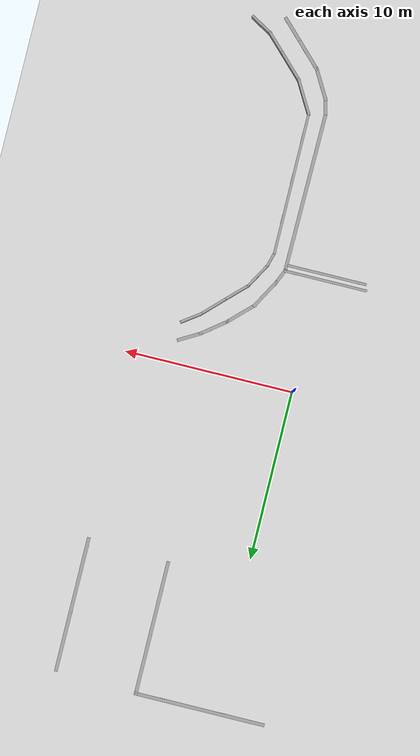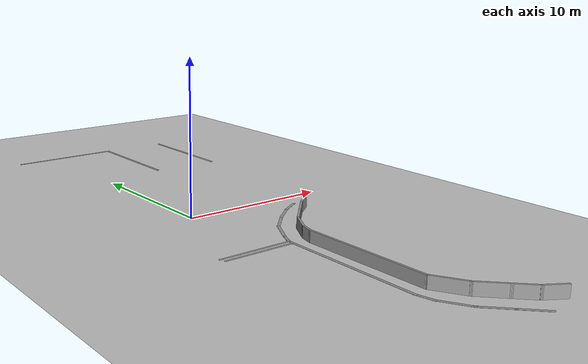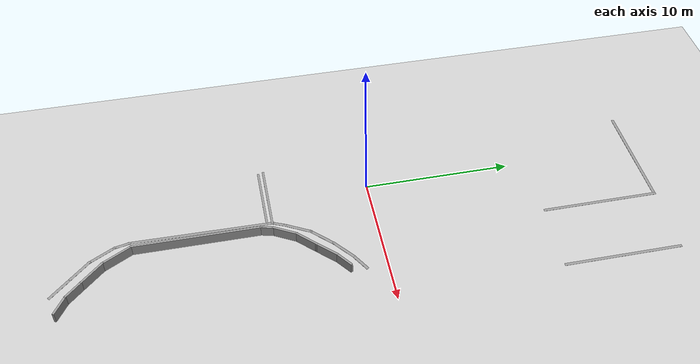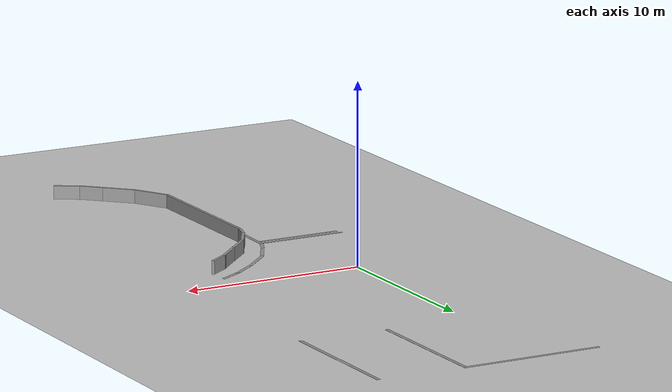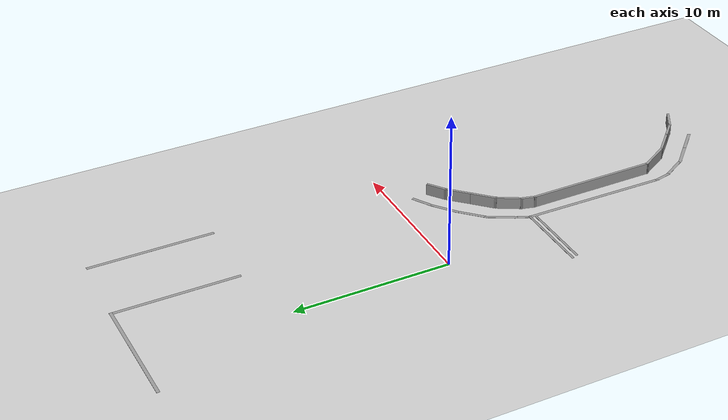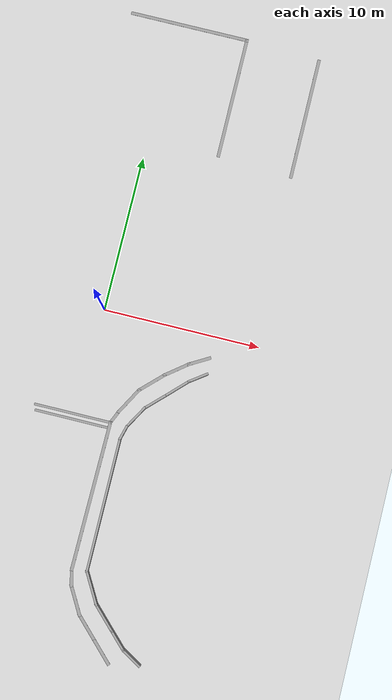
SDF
<sdf version="1.6">
 <world name="default">
  <model name="ground_plane">
   <static>1</static>
   <link name="link">
    <collision name="collision">
     <geometry><plane><normal>0 0 1</normal><size>100 100</size></plane></geometry>
     <surface>
      <contact><collide_bitmask>65535</collide_bitmask></contact>
      <friction><ode><mu>100</mu><mu2>50</mu2></ode></friction>
     </surface>
    </collision>
    <visual name="visual">
     <cast_shadows>0</cast_shadows>
     <geometry><plane><normal>0 0 1</normal><size>100 100</size></plane></geometry>
     <material>
      <script><uri>file://media/materials/scripts/gazebo.material</uri><name>Gazebo/Grey</name></script>
     </material>
    </visual>
   </link>
  </model>
  <model name="GercekDuvarSeritKoyu1">
   <link name="Wall_1048">
    <pose>-69.8093 -50.4126 0 0 -0 0</pose>
    <visual name="Wall_1048_Visual">
     <pose>0 0 0.005 0 -0 0</pose>
     <geometry><box><size>8 0.2 0.01</size></box></geometry>
     <material>
      <script><uri>file://media/materials/scripts/gazebo.material</uri><name>Gazebo/Grey</name></script>
      <ambient>1 1 1 1</ambient>
      <shader type="pixel"/>
     </material>
     <meta><layer>0</layer></meta>
    </visual>
    <collision name="Wall_1048_Collision">
     <pose>0 0 0.005 0 -0 0</pose>
     <geometry><box><size>8 0.2 0.01</size></box></geometry>
     <surface>
      <friction>
       <ode><mu>1</mu><mu2>1</mu2><fdir1>0 0 0</fdir1><slip1>0</slip1><slip2>0</slip2></ode>
       <torsional>
        <coefficient>1</coefficient>
        <patch_radius>0</patch_radius>
        <surface_radius>0</surface_radius>
        <use_patch_radius>1</use_patch_radius>
        <ode><slip>0</slip></ode>
       </torsional>
      </friction>
      <bounce><restitution_coefficient>0</restitution_coefficient><threshold>1e+06</threshold></bounce>
      <contact>
       <collide_without_contact>0</collide_without_contact>
       <collide_without_contact_bitmask>1</collide_without_contact_bitmask>
       <collide_bitmask>1</collide_bitmask>
       <ode>
        <soft_cfm>0</soft_cfm>
        <soft_erp>0.2</soft_erp>
        <kp>1e+13</kp>
        <kd>1</kd>
        <max_vel>0.01</max_vel>
        <min_depth>0</min_depth>
       </ode>
       <bullet>
        <split_impulse>1</split_impulse>
        <split_impulse_penetration_threshold>-0.01</split_impulse_penetration_threshold>
        <soft_cfm>0</soft_cfm>
        <soft_erp>0.2</soft_erp>
        <kp>1e+13</kp>
        <kd>1</kd>
       </bullet>
      </contact>
     </surface>
    </collision>
   </link>
   <link name="Wall_1050">
    <pose>-70.0479 -55.2375 0 0 -0 2e-05</pose>
    <visual name="Wall_1050_Visual">
     <pose>0 0 0.005 0 -0 0</pose>
     <geometry><box><size>8 0.2 0.01</size></box></geometry>
     <material>
      <script><uri>file://media/materials/scripts/gazebo.material</uri><name>Gazebo/Grey</name></script>
      <ambient>1 1 1 1</ambient>
      <shader type="pixel"/>
     </material>
     <meta><layer>0</layer></meta>
    </visual>
    <collision name="Wall_1050_Collision">
     <pose>0 0 0.005 0 -0 0</pose>
     <geometry><box><size>8 0.2 0.01</size></box></geometry>
     <surface>
      <friction>
       <ode><mu>1</mu><mu2>1</mu2><fdir1>0 0 0</fdir1><slip1>0</slip1><slip2>0</slip2></ode>
       <torsional>
        <coefficient>1</coefficient>
        <patch_radius>0</patch_radius>
        <surface_radius>0</surface_radius>
        <use_patch_radius>1</use_patch_radius>
        <ode><slip>0</slip></ode>
       </torsional>
      </friction>
      <bounce><restitution_coefficient>0</restitution_coefficient><threshold>1e+06</threshold></bounce>
      <contact>
       <collide_without_contact>0</collide_without_contact>
       <collide_without_contact_bitmask>1</collide_without_contact_bitmask>
       <collide_bitmask>1</collide_bitmask>
       <ode>
        <soft_cfm>0</soft_cfm>
        <soft_erp>0.2</soft_erp>
        <kp>1e+13</kp>
        <kd>1</kd>
        <max_vel>0.01</max_vel>
        <min_depth>0</min_depth>
       </ode>
       <bullet>
        <split_impulse>1</split_impulse>
        <split_impulse_penetration_threshold>-0.01</split_impulse_penetration_threshold>
        <soft_cfm>0</soft_cfm>
        <soft_erp>0.2</soft_erp>
        <kp>1e+13</kp>
        <kd>1</kd>
       </bullet>
      </contact>
     </surface>
    </collision>
   </link>
   <link name="Wall_329">
    <pose>-73.9479 -59.0376 0 0 0 -1.5708</pose>
    <visual name="Wall_329_Visual">
     <pose>0 0 0.005 0 -0 0</pose>
     <geometry><box><size>7.79982 0.2 0.01</size></box></geometry>
     <material>
      <script><uri>file://media/materials/scripts/gazebo.material</uri><name>Gazebo/Grey</name></script>
      <ambient>1 1 1 1</ambient>
      <shader type="pixel"/>
     </material>
     <meta><layer>0</layer></meta>
    </visual>
    <collision name="Wall_329_Collision">
     <pose>0 0 0.005 0 -0 0</pose>
     <geometry><box><size>7.79982 0.2 0.01</size></box></geometry>
     <surface>
      <friction>
       <ode><mu>1</mu><mu2>1</mu2><fdir1>0 0 0</fdir1><slip1>0</slip1><slip2>0</slip2></ode>
       <torsional>
        <coefficient>1</coefficient>
        <patch_radius>0</patch_radius>
        <surface_radius>0</surface_radius>
        <use_patch_radius>1</use_patch_radius>
        <ode><slip>0</slip></ode>
       </torsional>
      </friction>
      <bounce><restitution_coefficient>0</restitution_coefficient><threshold>1e+06</threshold></bounce>
      <contact>
       <collide_without_contact>0</collide_without_contact>
       <collide_without_contact_bitmask>1</collide_without_contact_bitmask>
       <collide_bitmask>1</collide_bitmask>
       <ode>
        <soft_cfm>0</soft_cfm>
        <soft_erp>0.2</soft_erp>
        <kp>1e+13</kp>
        <kd>1</kd>
        <max_vel>0.01</max_vel>
        <min_depth>0</min_depth>
       </ode>
       <bullet>
        <split_impulse>1</split_impulse>
        <split_impulse_penetration_threshold>-0.01</split_impulse_penetration_threshold>
        <soft_cfm>0</soft_cfm>
        <soft_erp>0.2</soft_erp>
        <kp>1e+13</kp>
        <kd>1</kd>
       </bullet>
      </contact>
     </surface>
    </collision>
   </link>
   <link name="Wall_332">
    <pose>-43.2989 -57.8351 0 0 0 -0.011657</pose>
    <visual name="Wall_332_Visual">
     <pose>0 0 0.005 0 -0 0</pose>
     <geometry><box><size>9.55032 0.2 0.01</size></box></geometry>
     <material>
      <script><uri>file://media/materials/scripts/gazebo.material</uri><name>Gazebo/Grey</name></script>
      <ambient>1 1 1 1</ambient>
      <shader type="pixel"/>
     </material>
     <meta><layer>0</layer></meta>
    </visual>
    <collision name="Wall_332_Collision">
     <pose>0 0 0.005 0 -0 0</pose>
     <geometry><box><size>9.55032 0.2 0.01</size></box></geometry>
     <surface>
      <friction>
       <ode><mu>1</mu><mu2>1</mu2><fdir1>0 0 0</fdir1><slip1>0</slip1><slip2>0</slip2></ode>
       <torsional>
        <coefficient>1</coefficient>
        <patch_radius>0</patch_radius>
        <surface_radius>0</surface_radius>
        <use_patch_radius>1</use_patch_radius>
        <ode><slip>0</slip></ode>
       </torsional>
      </friction>
      <bounce><restitution_coefficient>0</restitution_coefficient><threshold>1e+06</threshold></bounce>
      <contact>
       <collide_without_contact>0</collide_without_contact>
       <collide_without_contact_bitmask>1</collide_without_contact_bitmask>
       <collide_bitmask>1</collide_bitmask>
       <ode>
        <soft_cfm>0</soft_cfm>
        <soft_erp>0.2</soft_erp>
        <kp>1e+13</kp>
        <kd>1</kd>
        <max_vel>0.01</max_vel>
        <min_depth>0</min_depth>
       </ode>
       <bullet>
        <split_impulse>1</split_impulse>
        <split_impulse_penetration_threshold>-0.01</split_impulse_penetration_threshold>
        <soft_cfm>0</soft_cfm>
        <soft_erp>0.2</soft_erp>
        <kp>1e+13</kp>
        <kd>1</kd>
       </bullet>
      </contact>
     </surface>
    </collision>
   </link>
   <link name="Wall_338">
    <pose>-38.1344 -57.7796 0 0 -0 0.221047</pose>
    <visual name="Wall_338_Visual">
     <pose>0 0 0.005 0 -0 0</pose>
     <geometry><box><size>1.20315 0.2 0.01</size></box></geometry>
     <material>
      <script><uri>file://media/materials/scripts/gazebo.material</uri><name>Gazebo/Grey</name></script>
      <ambient>1 1 1 1</ambient>
      <shader type="pixel"/>
     </material>
     <meta><layer>0</layer></meta>
    </visual>
    <collision name="Wall_338_Collision">
     <pose>0 0 0.005 0 -0 0</pose>
     <geometry><box><size>1.20315 0.2 0.01</size></box></geometry>
     <surface>
      <friction>
       <ode><mu>1</mu><mu2>1</mu2><fdir1>0 0 0</fdir1><slip1>0</slip1><slip2>0</slip2></ode>
       <torsional>
        <coefficient>1</coefficient>
        <patch_radius>0</patch_radius>
        <surface_radius>0</surface_radius>
        <use_patch_radius>1</use_patch_radius>
        <ode><slip>0</slip></ode>
       </torsional>
      </friction>
      <bounce><restitution_coefficient>0</restitution_coefficient><threshold>1e+06</threshold></bounce>
      <contact>
       <collide_without_contact>0</collide_without_contact>
       <collide_without_contact_bitmask>1</collide_without_contact_bitmask>
       <collide_bitmask>1</collide_bitmask>
       <ode>
        <soft_cfm>0</soft_cfm>
        <soft_erp>0.2</soft_erp>
        <kp>1e+13</kp>
        <kd>1</kd>
        <max_vel>0.01</max_vel>
        <min_depth>0</min_depth>
       </ode>
       <bullet>
        <split_impulse>1</split_impulse>
        <split_impulse_penetration_threshold>-0.01</split_impulse_penetration_threshold>
        <soft_cfm>0</soft_cfm>
        <soft_erp>0.2</soft_erp>
        <kp>1e+13</kp>
        <kd>1</kd>
       </bullet>
      </contact>
     </surface>
    </collision>
   </link>
   <link name="Wall_339">
    <pose>-36.8439 -57.2071 0 0 -0 0.523639</pose>
    <visual name="Wall_339_Visual">
     <pose>0 0 0.005 0 -0 0</pose>
     <geometry><box><size>2.04971 0.2 0.01</size></box></geometry>
     <material>
      <script><uri>file://media/materials/scripts/gazebo.material</uri><name>Gazebo/Grey</name></script>
      <ambient>1 1 1 1</ambient>
      <shader type="pixel"/>
     </material>
     <meta><layer>0</layer></meta>
    </visual>
    <collision name="Wall_339_Collision">
     <pose>0 0 0.005 0 -0 0</pose>
     <geometry><box><size>2.04971 0.2 0.01</size></box></geometry>
     <surface>
      <friction>
       <ode><mu>1</mu><mu2>1</mu2><fdir1>0 0 0</fdir1><slip1>0</slip1><slip2>0</slip2></ode>
       <torsional>
        <coefficient>1</coefficient>
        <patch_radius>0</patch_radius>
        <surface_radius>0</surface_radius>
        <use_patch_radius>1</use_patch_radius>
        <ode><slip>0</slip></ode>
       </torsional>
      </friction>
      <bounce><restitution_coefficient>0</restitution_coefficient><threshold>1e+06</threshold></bounce>
      <contact>
       <collide_without_contact>0</collide_without_contact>
       <collide_without_contact_bitmask>1</collide_without_contact_bitmask>
       <collide_bitmask>1</collide_bitmask>
       <ode>
        <soft_cfm>0</soft_cfm>
        <soft_erp>0.2</soft_erp>
        <kp>1e+13</kp>
        <kd>1</kd>
        <max_vel>0.01</max_vel>
        <min_depth>0</min_depth>
       </ode>
       <bullet>
        <split_impulse>1</split_impulse>
        <split_impulse_penetration_threshold>-0.01</split_impulse_penetration_threshold>
        <soft_cfm>0</soft_cfm>
        <soft_erp>0.2</soft_erp>
        <kp>1e+13</kp>
        <kd>1</kd>
       </bullet>
      </contact>
     </surface>
    </collision>
   </link>
   <link name="Wall_340">
    <pose>-35.3889 -56.0906 0 0 -0 0.785398</pose>
    <visual name="Wall_340_Visual">
     <pose>0 0 0.005 0 -0 0</pose>
     <geometry><box><size>2.04981 0.2 0.01</size></box></geometry>
     <material>
      <script><uri>file://media/materials/scripts/gazebo.material</uri><name>Gazebo/Grey</name></script>
      <ambient>1 1 1 1</ambient>
      <shader type="pixel"/>
     </material>
     <meta><layer>0</layer></meta>
    </visual>
    <collision name="Wall_340_Collision">
     <pose>0 0 0.005 0 -0 0</pose>
     <geometry><box><size>2.04981 0.2 0.01</size></box></geometry>
     <surface>
      <friction>
       <ode><mu>1</mu><mu2>1</mu2><fdir1>0 0 0</fdir1><slip1>0</slip1><slip2>0</slip2></ode>
       <torsional>
        <coefficient>1</coefficient>
        <patch_radius>0</patch_radius>
        <surface_radius>0</surface_radius>
        <use_patch_radius>1</use_patch_radius>
        <ode><slip>0</slip></ode>
       </torsional>
      </friction>
      <bounce><restitution_coefficient>0</restitution_coefficient><threshold>1e+06</threshold></bounce>
      <contact>
       <collide_without_contact>0</collide_without_contact>
       <collide_without_contact_bitmask>1</collide_without_contact_bitmask>
       <collide_bitmask>1</collide_bitmask>
       <ode>
        <soft_cfm>0</soft_cfm>
        <soft_erp>0.2</soft_erp>
        <kp>1e+13</kp>
        <kd>1</kd>
        <max_vel>0.01</max_vel>
        <min_depth>0</min_depth>
       </ode>
       <bullet>
        <split_impulse>1</split_impulse>
        <split_impulse_penetration_threshold>-0.01</split_impulse_penetration_threshold>
        <soft_cfm>0</soft_cfm>
        <soft_erp>0.2</soft_erp>
        <kp>1e+13</kp>
        <kd>1</kd>
       </bullet>
      </contact>
     </surface>
    </collision>
   </link>
   <link name="Wall_341">
    <pose>-34.1694 -54.8711 0 0 -0 0.785398</pose>
    <visual name="Wall_341_Visual">
     <pose>0 0 0.005 0 -0 0</pose>
     <geometry><box><size>1.80002 0.2 0.01</size></box></geometry>
     <material>
      <script><uri>file://media/materials/scripts/gazebo.material</uri><name>Gazebo/Grey</name></script>
      <ambient>1 1 1 1</ambient>
      <shader type="pixel"/>
     </material>
     <meta><layer>0</layer></meta>
    </visual>
    <collision name="Wall_341_Collision">
     <pose>0 0 0.005 0 -0 0</pose>
     <geometry><box><size>1.80002 0.2 0.01</size></box></geometry>
     <surface>
      <friction>
       <ode><mu>1</mu><mu2>1</mu2><fdir1>0 0 0</fdir1><slip1>0</slip1><slip2>0</slip2></ode>
       <torsional>
        <coefficient>1</coefficient>
        <patch_radius>0</patch_radius>
        <surface_radius>0</surface_radius>
        <use_patch_radius>1</use_patch_radius>
        <ode><slip>0</slip></ode>
       </torsional>
      </friction>
      <bounce><restitution_coefficient>0</restitution_coefficient><threshold>1e+06</threshold></bounce>
      <contact>
       <collide_without_contact>0</collide_without_contact>
       <collide_without_contact_bitmask>1</collide_without_contact_bitmask>
       <collide_bitmask>1</collide_bitmask>
       <ode>
        <soft_cfm>0</soft_cfm>
        <soft_erp>0.2</soft_erp>
        <kp>1e+13</kp>
        <kd>1</kd>
        <max_vel>0.01</max_vel>
        <min_depth>0</min_depth>
       </ode>
       <bullet>
        <split_impulse>1</split_impulse>
        <split_impulse_penetration_threshold>-0.01</split_impulse_penetration_threshold>
        <soft_cfm>0</soft_cfm>
        <soft_erp>0.2</soft_erp>
        <kp>1e+13</kp>
        <kd>1</kd>
       </bullet>
      </contact>
     </surface>
    </collision>
   </link>
   <link name="Wall_371">
    <pose>-53.0394 -53.3021 0 0 0 -1.04715</pose>
    <visual name="Wall_371_Visual">
     <pose>0 0 0.005 0 -0 0</pose>
     <geometry><box><size>1.55045 0.2 0.01</size></box></geometry>
     <material>
      <script><uri>file://media/materials/scripts/gazebo.material</uri><name>Gazebo/Grey</name></script>
      <ambient>1 1 1 1</ambient>
      <shader type="pixel"/>
     </material>
     <meta><layer>0</layer></meta>
    </visual>
    <collision name="Wall_371_Collision">
     <pose>0 0 0.005 0 -0 0</pose>
     <geometry><box><size>1.55045 0.2 0.01</size></box></geometry>
     <surface>
      <friction>
       <ode><mu>1</mu><mu2>1</mu2><fdir1>0 0 0</fdir1><slip1>0</slip1><slip2>0</slip2></ode>
       <torsional>
        <coefficient>1</coefficient>
        <patch_radius>0</patch_radius>
        <surface_radius>0</surface_radius>
        <use_patch_radius>1</use_patch_radius>
        <ode><slip>0</slip></ode>
       </torsional>
      </friction>
      <bounce><restitution_coefficient>0</restitution_coefficient><threshold>1e+06</threshold></bounce>
      <contact>
       <collide_without_contact>0</collide_without_contact>
       <collide_without_contact_bitmask>1</collide_without_contact_bitmask>
       <collide_bitmask>1</collide_bitmask>
       <ode>
        <soft_cfm>0</soft_cfm>
        <soft_erp>0.2</soft_erp>
        <kp>1e+13</kp>
        <kd>1</kd>
        <max_vel>0.01</max_vel>
        <min_depth>0</min_depth>
       </ode>
       <bullet>
        <split_impulse>1</split_impulse>
        <split_impulse_penetration_threshold>-0.01</split_impulse_penetration_threshold>
        <soft_cfm>0</soft_cfm>
        <soft_erp>0.2</soft_erp>
        <kp>1e+13</kp>
        <kd>1</kd>
       </bullet>
      </contact>
     </surface>
    </collision>
   </link>
   <link name="Wall_372">
    <pose>-52.1899 -54.5436 0 0 0 -0.908805</pose>
    <visual name="Wall_372_Visual">
     <pose>0 0 0.005 0 -0 0</pose>
     <geometry><box><size>1.86549 0.2 0.01</size></box></geometry>
     <material>
      <script><uri>file://media/materials/scripts/gazebo.material</uri><name>Gazebo/Grey</name></script>
      <ambient>1 1 1 1</ambient>
      <shader type="pixel"/>
     </material>
     <meta><layer>0</layer></meta>
    </visual>
    <collision name="Wall_372_Collision">
     <pose>0 0 0.005 0 -0 0</pose>
     <geometry><box><size>1.86549 0.2 0.01</size></box></geometry>
     <surface>
      <friction>
       <ode><mu>1</mu><mu2>1</mu2><fdir1>0 0 0</fdir1><slip1>0</slip1><slip2>0</slip2></ode>
       <torsional>
        <coefficient>1</coefficient>
        <patch_radius>0</patch_radius>
        <surface_radius>0</surface_radius>
        <use_patch_radius>1</use_patch_radius>
        <ode><slip>0</slip></ode>
       </torsional>
      </friction>
      <bounce><restitution_coefficient>0</restitution_coefficient><threshold>1e+06</threshold></bounce>
      <contact>
       <collide_without_contact>0</collide_without_contact>
       <collide_without_contact_bitmask>1</collide_without_contact_bitmask>
       <collide_bitmask>1</collide_bitmask>
       <ode>
        <soft_cfm>0</soft_cfm>
        <soft_erp>0.2</soft_erp>
        <kp>1e+13</kp>
        <kd>1</kd>
        <max_vel>0.01</max_vel>
        <min_depth>0</min_depth>
       </ode>
       <bullet>
        <split_impulse>1</split_impulse>
        <split_impulse_penetration_threshold>-0.01</split_impulse_penetration_threshold>
        <soft_cfm>0</soft_cfm>
        <soft_erp>0.2</soft_erp>
        <kp>1e+13</kp>
        <kd>1</kd>
       </bullet>
      </contact>
     </surface>
    </collision>
   </link>
   <link name="Wall_373">
    <pose>-51.0239 -55.8676 0 0 0 -0.795239</pose>
    <visual name="Wall_373_Visual">
     <pose>0 0 0.005 0 -0 0</pose>
     <geometry><box><size>2.06852 0.2 0.01</size></box></geometry>
     <material>
      <script><uri>file://media/materials/scripts/gazebo.material</uri><name>Gazebo/Grey</name></script>
      <ambient>1 1 1 1</ambient>
      <shader type="pixel"/>
     </material>
     <meta><layer>0</layer></meta>
    </visual>
    <collision name="Wall_373_Collision">
     <pose>0 0 0.005 0 -0 0</pose>
     <geometry><box><size>2.06852 0.2 0.01</size></box></geometry>
     <surface>
      <friction>
       <ode><mu>1</mu><mu2>1</mu2><fdir1>0 0 0</fdir1><slip1>0</slip1><slip2>0</slip2></ode>
       <torsional>
        <coefficient>1</coefficient>
        <patch_radius>0</patch_radius>
        <surface_radius>0</surface_radius>
        <use_patch_radius>1</use_patch_radius>
        <ode><slip>0</slip></ode>
       </torsional>
      </friction>
      <bounce><restitution_coefficient>0</restitution_coefficient><threshold>1e+06</threshold></bounce>
      <contact>
       <collide_without_contact>0</collide_without_contact>
       <collide_without_contact_bitmask>1</collide_without_contact_bitmask>
       <collide_bitmask>1</collide_bitmask>
       <ode>
        <soft_cfm>0</soft_cfm>
        <soft_erp>0.2</soft_erp>
        <kp>1e+13</kp>
        <kd>1</kd>
        <max_vel>0.01</max_vel>
        <min_depth>0</min_depth>
       </ode>
       <bullet>
        <split_impulse>1</split_impulse>
        <split_impulse_penetration_threshold>-0.01</split_impulse_penetration_threshold>
        <soft_cfm>0</soft_cfm>
        <soft_erp>0.2</soft_erp>
        <kp>1e+13</kp>
        <kd>1</kd>
       </bullet>
      </contact>
     </surface>
    </collision>
   </link>
   <link name="Wall_374">
    <pose>-49.5689 -56.9841 0 0 0 -0.511381</pose>
    <visual name="Wall_374_Visual">
     <pose>0 0 0.005 0 -0 0</pose>
     <geometry><box><size>2.03697 0.2 0.01</size></box></geometry>
     <material>
      <script><uri>file://media/materials/scripts/gazebo.material</uri><name>Gazebo/Grey</name></script>
      <ambient>1 1 1 1</ambient>
      <shader type="pixel"/>
     </material>
     <meta><layer>0</layer></meta>
    </visual>
    <collision name="Wall_374_Collision">
     <pose>0 0 0.005 0 -0 0</pose>
     <geometry><box><size>2.03697 0.2 0.01</size></box></geometry>
     <surface>
      <friction>
       <ode><mu>1</mu><mu2>1</mu2><fdir1>0 0 0</fdir1><slip1>0</slip1><slip2>0</slip2></ode>
       <torsional>
        <coefficient>1</coefficient>
        <patch_radius>0</patch_radius>
        <surface_radius>0</surface_radius>
        <use_patch_radius>1</use_patch_radius>
        <ode><slip>0</slip></ode>
       </torsional>
      </friction>
      <bounce><restitution_coefficient>0</restitution_coefficient><threshold>1e+06</threshold></bounce>
      <contact>
       <collide_without_contact>0</collide_without_contact>
       <collide_without_contact_bitmask>1</collide_without_contact_bitmask>
       <collide_bitmask>1</collide_bitmask>
       <ode>
        <soft_cfm>0</soft_cfm>
        <soft_erp>0.2</soft_erp>
        <kp>1e+13</kp>
        <kd>1</kd>
        <max_vel>0.01</max_vel>
        <min_depth>0</min_depth>
       </ode>
       <bullet>
        <split_impulse>1</split_impulse>
        <split_impulse_penetration_threshold>-0.01</split_impulse_penetration_threshold>
        <soft_cfm>0</soft_cfm>
        <soft_erp>0.2</soft_erp>
        <kp>1e+13</kp>
        <kd>1</kd>
       </bullet>
      </contact>
     </surface>
    </collision>
   </link>
   <link name="Wall_377">
    <pose>-48.3709 -57.6071 0 0 -0 2.72958</pose>
    <visual name="Wall_377_Visual">
     <pose>0 0 0.005 0 -0 0</pose>
     <geometry><box><size>1.06651 0.2 0.01</size></box></geometry>
     <material>
      <script><uri>file://media/materials/scripts/gazebo.material</uri><name>Gazebo/Grey</name></script>
      <ambient>1 1 1 1</ambient>
      <shader type="pixel"/>
     </material>
     <meta><layer>0</layer></meta>
    </visual>
    <collision name="Wall_377_Collision">
     <pose>0 0 0.005 0 -0 0</pose>
     <geometry><box><size>1.06651 0.2 0.01</size></box></geometry>
     <surface>
      <friction>
       <ode><mu>1</mu><mu2>1</mu2><fdir1>0 0 0</fdir1><slip1>0</slip1><slip2>0</slip2></ode>
       <torsional>
        <coefficient>1</coefficient>
        <patch_radius>0</patch_radius>
        <surface_radius>0</surface_radius>
        <use_patch_radius>1</use_patch_radius>
        <ode><slip>0</slip></ode>
       </torsional>
      </friction>
      <bounce><restitution_coefficient>0</restitution_coefficient><threshold>1e+06</threshold></bounce>
      <contact>
       <collide_without_contact>0</collide_without_contact>
       <collide_without_contact_bitmask>1</collide_without_contact_bitmask>
       <collide_bitmask>1</collide_bitmask>
       <ode>
        <soft_cfm>0</soft_cfm>
        <soft_erp>0.2</soft_erp>
        <kp>1e+13</kp>
        <kd>1</kd>
        <max_vel>0.01</max_vel>
        <min_depth>0</min_depth>
       </ode>
       <bullet>
        <split_impulse>1</split_impulse>
        <split_impulse_penetration_threshold>-0.01</split_impulse_penetration_threshold>
        <soft_cfm>0</soft_cfm>
        <soft_erp>0.2</soft_erp>
        <kp>1e+13</kp>
        <kd>1</kd>
       </bullet>
      </contact>
     </surface>
    </collision>
   </link>
   <link name="Wall_596">
    <pose>-47.6239 -60.2076 0 0 0 -1.5708</pose>
    <visual name="Wall_596_Visual">
     <pose>0 0 0.005 0 -0 0</pose>
     <geometry><box><size>4.75 0.15 0.01</size></box></geometry>
     <material>
      <script><uri>file://media/materials/scripts/gazebo.material</uri><name>Gazebo/Grey</name></script>
      <ambient>1 1 1 1</ambient>
      <shader type="pixel"/>
     </material>
     <meta><layer>0</layer></meta>
    </visual>
    <collision name="Wall_596_Collision">
     <pose>0 0 0.005 0 -0 0</pose>
     <geometry><box><size>4.75 0.15 0.01</size></box></geometry>
     <surface>
      <friction>
       <ode><mu>1</mu><mu2>1</mu2><fdir1>0 0 0</fdir1><slip1>0</slip1><slip2>0</slip2></ode>
       <torsional>
        <coefficient>1</coefficient>
        <patch_radius>0</patch_radius>
        <surface_radius>0</surface_radius>
        <use_patch_radius>1</use_patch_radius>
        <ode><slip>0</slip></ode>
       </torsional>
      </friction>
      <bounce><restitution_coefficient>0</restitution_coefficient><threshold>1e+06</threshold></bounce>
      <contact>
       <collide_without_contact>0</collide_without_contact>
       <collide_without_contact_bitmask>1</collide_without_contact_bitmask>
       <collide_bitmask>1</collide_bitmask>
       <ode>
        <soft_cfm>0</soft_cfm>
        <soft_erp>0.2</soft_erp>
        <kp>1e+13</kp>
        <kd>1</kd>
        <max_vel>0.01</max_vel>
        <min_depth>0</min_depth>
       </ode>
       <bullet>
        <split_impulse>1</split_impulse>
        <split_impulse_penetration_threshold>-0.01</split_impulse_penetration_threshold>
        <soft_cfm>0</soft_cfm>
        <soft_erp>0.2</soft_erp>
        <kp>1e+13</kp>
        <kd>1</kd>
       </bullet>
      </contact>
     </surface>
    </collision>
   </link>
   <link name="Wall_600">
    <pose>-47.9739 -60.2056 0 0 0 -1.5708</pose>
    <visual name="Wall_600_Visual">
     <pose>0 0 0.005 0 -0 0</pose>
     <geometry><box><size>5 0.15 0.01</size></box></geometry>
     <material>
      <script><uri>file://media/materials/scripts/gazebo.material</uri><name>Gazebo/Grey</name></script>
      <ambient>1 1 1 1</ambient>
      <shader type="pixel"/>
     </material>
     <meta><layer>0</layer></meta>
    </visual>
    <collision name="Wall_600_Collision">
     <pose>0 0 0.005 0 -0 0</pose>
     <geometry><box><size>5 0.15 0.01</size></box></geometry>
     <surface>
      <friction>
       <ode><mu>1</mu><mu2>1</mu2><fdir1>0 0 0</fdir1><slip1>0</slip1><slip2>0</slip2></ode>
       <torsional>
        <coefficient>1</coefficient>
        <patch_radius>0</patch_radius>
        <surface_radius>0</surface_radius>
        <use_patch_radius>1</use_patch_radius>
        <ode><slip>0</slip></ode>
       </torsional>
      </friction>
      <bounce><restitution_coefficient>0</restitution_coefficient><threshold>1e+06</threshold></bounce>
      <contact>
       <collide_without_contact>0</collide_without_contact>
       <collide_without_contact_bitmask>1</collide_without_contact_bitmask>
       <collide_bitmask>1</collide_bitmask>
       <ode>
        <soft_cfm>0</soft_cfm>
        <soft_erp>0.2</soft_erp>
        <kp>1e+13</kp>
        <kd>1</kd>
        <max_vel>0.01</max_vel>
        <min_depth>0</min_depth>
       </ode>
       <bullet>
        <split_impulse>1</split_impulse>
        <split_impulse_penetration_threshold>-0.01</split_impulse_penetration_threshold>
        <soft_cfm>0</soft_cfm>
        <soft_erp>0.2</soft_erp>
        <kp>1e+13</kp>
        <kd>1</kd>
       </bullet>
      </contact>
     </surface>
    </collision>
   </link>
   <link name="Wall_78">
    <pose>-34.3794 -53.0146 0 0 0 -2.09482</pose>
    <inertial>
     <mass>1</mass>
     <inertia><ixx>1</ixx><ixy>0</ixy><ixz>0</ixz><iyy>1</iyy><iyz>0</iyz><izz>1</izz></inertia>
    </inertial>
    <visual name="Wall_78_Visual">
     <pose>0 0 0.375 0 -0 0</pose>
     <geometry><box><size>1.49965 0.15 0.75</size></box></geometry>
     <material>
      <script><uri>file://media/materials/scripts/gazebo.material</uri><name>Gazebo/Grey</name></script>
      <ambient>0.5 0.5 0.5 1</ambient>
      <shader type="pixel"><normal_map>__default__</normal_map></shader>
      <diffuse>0.7 0.7 0.7 1</diffuse>
      <specular>0.01 0.01 0.01 1</specular>
      <emissive>0 0 0 1</emissive>
     </material>
     <meta><layer>0</layer></meta>
    </visual>
    <collision name="Wall_78_Collision">
     <pose>0 0 0.375 0 -0 0</pose>
     <geometry><box><size>1.49965 0.15 0.75</size></box></geometry>
     <surface>
      <friction>
       <ode><mu>1</mu><mu2>1</mu2><fdir1>0 0 0</fdir1><slip1>0</slip1><slip2>0</slip2></ode>
       <torsional>
        <coefficient>1</coefficient>
        <patch_radius>0</patch_radius>
        <surface_radius>0</surface_radius>
        <use_patch_radius>1</use_patch_radius>
        <ode><slip>0</slip></ode>
       </torsional>
      </friction>
      <bounce><restitution_coefficient>0</restitution_coefficient><threshold>1e+06</threshold></bounce>
      <contact>
       <collide_without_contact>0</collide_without_contact>
       <collide_without_contact_bitmask>1</collide_without_contact_bitmask>
       <collide_bitmask>1</collide_bitmask>
       <ode>
        <soft_cfm>0</soft_cfm>
        <soft_erp>0.2</soft_erp>
        <kp>1e+13</kp>
        <kd>1</kd>
        <max_vel>0.01</max_vel>
        <min_depth>0</min_depth>
       </ode>
       <bullet>
        <split_impulse>1</split_impulse>
        <split_impulse_penetration_threshold>-0.01</split_impulse_penetration_threshold>
        <soft_cfm>0</soft_cfm>
        <soft_erp>0.2</soft_erp>
        <kp>1e+13</kp>
        <kd>1</kd>
       </bullet>
      </contact>
     </surface>
    </collision>
   </link>
   <link name="Wall_79">
    <pose>-35.1944 -54.0821 0 0 0 -2.34995</pose>
    <inertial>
     <mass>1</mass>
     <inertia><ixx>1</ixx><ixy>0</ixy><ixz>0</ixz><iyy>1</iyy><iyz>0</iyz><izz>1</izz></inertia>
    </inertial>
    <visual name="Wall_79_Visual">
     <pose>0 0 0.375 0 -0 0</pose>
     <geometry><box><size>1.50909 0.15 0.75</size></box></geometry>
     <material>
      <script><uri>file://media/materials/scripts/gazebo.material</uri><name>Gazebo/Grey</name></script>
      <ambient>0.5 0.5 0.5 1</ambient>
      <shader type="pixel"><normal_map>__default__</normal_map></shader>
      <diffuse>0.7 0.7 0.7 1</diffuse>
      <specular>0.01 0.01 0.01 1</specular>
      <emissive>0 0 0 1</emissive>
     </material>
     <meta><layer>0</layer></meta>
    </visual>
    <collision name="Wall_79_Collision">
     <pose>0 0 0.375 0 -0 0</pose>
     <geometry><box><size>1.50909 0.15 0.75</size></box></geometry>
     <surface>
      <friction>
       <ode><mu>1</mu><mu2>1</mu2><fdir1>0 0 0</fdir1><slip1>0</slip1><slip2>0</slip2></ode>
       <torsional>
        <coefficient>1</coefficient>
        <patch_radius>0</patch_radius>
        <surface_radius>0</surface_radius>
        <use_patch_radius>1</use_patch_radius>
        <ode><slip>0</slip></ode>
       </torsional>
      </friction>
      <bounce><restitution_coefficient>0</restitution_coefficient><threshold>1e+06</threshold></bounce>
      <contact>
       <collide_without_contact>0</collide_without_contact>
       <collide_without_contact_bitmask>1</collide_without_contact_bitmask>
       <collide_bitmask>1</collide_bitmask>
       <ode>
        <soft_cfm>0</soft_cfm>
        <soft_erp>0.2</soft_erp>
        <kp>1e+13</kp>
        <kd>1</kd>
        <max_vel>0.01</max_vel>
        <min_depth>0</min_depth>
       </ode>
       <bullet>
        <split_impulse>1</split_impulse>
        <split_impulse_penetration_threshold>-0.01</split_impulse_penetration_threshold>
        <soft_cfm>0</soft_cfm>
        <soft_erp>0.2</soft_erp>
        <kp>1e+13</kp>
        <kd>1</kd>
       </bullet>
      </contact>
     </surface>
    </collision>
   </link>
   <link name="Wall_80">
    <pose>-36.3259 -55.2196 0 0 0 -2.35619</pose>
    <inertial>
     <mass>1</mass>
     <inertia><ixx>1</ixx><ixy>0</ixy><ixz>0</ixz><iyy>1</iyy><iyz>0</iyz><izz>1</izz></inertia>
    </inertial>
    <visual name="Wall_80_Visual">
     <pose>0 0 0.375 0 -0 0</pose>
     <geometry><box><size>2 0.15 0.75</size></box></geometry>
     <material>
      <script><uri>file://media/materials/scripts/gazebo.material</uri><name>Gazebo/Grey</name></script>
      <ambient>0.5 0.5 0.5 1</ambient>
      <shader type="pixel"><normal_map>__default__</normal_map></shader>
      <diffuse>0.7 0.7 0.7 1</diffuse>
      <specular>0.01 0.01 0.01 1</specular>
      <emissive>0 0 0 1</emissive>
     </material>
     <meta><layer>0</layer></meta>
    </visual>
    <collision name="Wall_80_Collision">
     <pose>0 0 0.375 0 -0 0</pose>
     <geometry><box><size>2 0.15 0.75</size></box></geometry>
     <surface>
      <friction>
       <ode><mu>1</mu><mu2>1</mu2><fdir1>0 0 0</fdir1><slip1>0</slip1><slip2>0</slip2></ode>
       <torsional>
        <coefficient>1</coefficient>
        <patch_radius>0</patch_radius>
        <surface_radius>0</surface_radius>
        <use_patch_radius>1</use_patch_radius>
        <ode><slip>0</slip></ode>
       </torsional>
      </friction>
      <bounce><restitution_coefficient>0</restitution_coefficient><threshold>1e+06</threshold></bounce>
      <contact>
       <collide_without_contact>0</collide_without_contact>
       <collide_without_contact_bitmask>1</collide_without_contact_bitmask>
       <collide_bitmask>1</collide_bitmask>
       <ode>
        <soft_cfm>0</soft_cfm>
        <soft_erp>0.2</soft_erp>
        <kp>1e+13</kp>
        <kd>1</kd>
        <max_vel>0.01</max_vel>
        <min_depth>0</min_depth>
       </ode>
       <bullet>
        <split_impulse>1</split_impulse>
        <split_impulse_penetration_threshold>-0.01</split_impulse_penetration_threshold>
        <soft_cfm>0</soft_cfm>
        <soft_erp>0.2</soft_erp>
        <kp>1e+13</kp>
        <kd>1</kd>
       </bullet>
      </contact>
     </surface>
    </collision>
   </link>
   <link name="Wall_81">
    <pose>-37.8889 -56.3986 0 0 0 -2.61784</pose>
    <inertial>
     <mass>1</mass>
     <inertia><ixx>1</ixx><ixy>0</ixy><ixz>0</ixz><iyy>1</iyy><iyz>0</iyz><izz>1</izz></inertia>
    </inertial>
    <visual name="Wall_81_Visual">
     <pose>0 0 0.375 0 -0 0</pose>
     <geometry><box><size>2.25 0.15 0.75</size></box></geometry>
     <material>
      <script><uri>file://media/materials/scripts/gazebo.material</uri><name>Gazebo/Grey</name></script>
      <ambient>0.5 0.5 0.5 1</ambient>
      <shader type="pixel"><normal_map>__default__</normal_map></shader>
      <diffuse>0.7 0.7 0.7 1</diffuse>
      <specular>0.01 0.01 0.01 1</specular>
      <emissive>0 0 0 1</emissive>
     </material>
     <meta><layer>0</layer></meta>
    </visual>
    <collision name="Wall_81_Collision">
     <pose>0 0 0.375 0 -0 0</pose>
     <geometry><box><size>2.25 0.15 0.75</size></box></geometry>
     <surface>
      <friction>
       <ode><mu>1</mu><mu2>1</mu2><fdir1>0 0 0</fdir1><slip1>0</slip1><slip2>0</slip2></ode>
       <torsional>
        <coefficient>1</coefficient>
        <patch_radius>0</patch_radius>
        <surface_radius>0</surface_radius>
        <use_patch_radius>1</use_patch_radius>
        <ode><slip>0</slip></ode>
       </torsional>
      </friction>
      <bounce><restitution_coefficient>0</restitution_coefficient><threshold>1e+06</threshold></bounce>
      <contact>
       <collide_without_contact>0</collide_without_contact>
       <collide_without_contact_bitmask>1</collide_without_contact_bitmask>
       <collide_bitmask>1</collide_bitmask>
       <ode>
        <soft_cfm>0</soft_cfm>
        <soft_erp>0.2</soft_erp>
        <kp>1e+13</kp>
        <kd>1</kd>
        <max_vel>0.01</max_vel>
        <min_depth>0</min_depth>
       </ode>
       <bullet>
        <split_impulse>1</split_impulse>
        <split_impulse_penetration_threshold>-0.01</split_impulse_penetration_threshold>
        <soft_cfm>0</soft_cfm>
        <soft_erp>0.2</soft_erp>
        <kp>1e+13</kp>
        <kd>1</kd>
       </bullet>
      </contact>
     </surface>
    </collision>
   </link>
   <link name="Wall_82">
    <pose>-42.9729 -56.9236 0 0 -0 3.14159</pose>
    <inertial>
     <mass>1</mass>
     <inertia><ixx>1</ixx><ixy>0</ixy><ixz>0</ixz><iyy>1</iyy><iyz>0</iyz><izz>1</izz></inertia>
    </inertial>
    <visual name="Wall_82_Visual">
     <pose>0 0 0.375 0 -0 0</pose>
     <geometry><box><size>8.5 0.15 0.75</size></box></geometry>
     <material>
      <script><uri>file://media/materials/scripts/gazebo.material</uri><name>Gazebo/Grey</name></script>
      <ambient>0.5 0.5 0.5 1</ambient>
      <shader type="pixel"><normal_map>__default__</normal_map></shader>
      <diffuse>0.7 0.7 0.7 1</diffuse>
      <specular>0.01 0.01 0.01 1</specular>
      <emissive>0 0 0 1</emissive>
     </material>
     <meta><layer>0</layer></meta>
    </visual>
    <collision name="Wall_82_Collision">
     <pose>0 0 0.375 0 -0 0</pose>
     <geometry><box><size>8.5 0.15 0.75</size></box></geometry>
     <surface>
      <friction>
       <ode><mu>1</mu><mu2>1</mu2><fdir1>0 0 0</fdir1><slip1>0</slip1><slip2>0</slip2></ode>
       <torsional>
        <coefficient>1</coefficient>
        <patch_radius>0</patch_radius>
        <surface_radius>0</surface_radius>
        <use_patch_radius>1</use_patch_radius>
        <ode><slip>0</slip></ode>
       </torsional>
      </friction>
      <bounce><restitution_coefficient>0</restitution_coefficient><threshold>1e+06</threshold></bounce>
      <contact>
       <collide_without_contact>0</collide_without_contact>
       <collide_without_contact_bitmask>1</collide_without_contact_bitmask>
       <collide_bitmask>1</collide_bitmask>
       <ode>
        <soft_cfm>0</soft_cfm>
        <soft_erp>0.2</soft_erp>
        <kp>1e+13</kp>
        <kd>1</kd>
        <max_vel>0.01</max_vel>
        <min_depth>0</min_depth>
       </ode>
       <bullet>
        <split_impulse>1</split_impulse>
        <split_impulse_penetration_threshold>-0.01</split_impulse_penetration_threshold>
        <soft_cfm>0</soft_cfm>
        <soft_erp>0.2</soft_erp>
        <kp>1e+13</kp>
        <kd>1</kd>
       </bullet>
      </contact>
     </surface>
    </collision>
   </link>
   <link name="Wall_83">
    <pose>-47.5584 -56.8136 0 0 -0 2.87978</pose>
    <inertial>
     <mass>1</mass>
     <inertia><ixx>1</ixx><ixy>0</ixy><ixz>0</ixz><iyy>1</iyy><iyz>0</iyz><izz>1</izz></inertia>
    </inertial>
    <visual name="Wall_83_Visual">
     <pose>0 0 0.375 0 -0 0</pose>
     <geometry><box><size>1 0.15 0.75</size></box></geometry>
     <material>
      <script><uri>file://media/materials/scripts/gazebo.material</uri><name>Gazebo/Grey</name></script>
      <ambient>0.5 0.5 0.5 1</ambient>
      <shader type="pixel"><normal_map>__default__</normal_map></shader>
      <diffuse>0.7 0.7 0.7 1</diffuse>
      <specular>0.01 0.01 0.01 1</specular>
      <emissive>0 0 0 1</emissive>
     </material>
     <meta><layer>0</layer></meta>
    </visual>
    <collision name="Wall_83_Collision">
     <pose>0 0 0.375 0 -0 0</pose>
     <geometry><box><size>1 0.15 0.75</size></box></geometry>
     <surface>
      <friction>
       <ode><mu>1</mu><mu2>1</mu2><fdir1>0 0 0</fdir1><slip1>0</slip1><slip2>0</slip2></ode>
       <torsional>
        <coefficient>1</coefficient>
        <patch_radius>0</patch_radius>
        <surface_radius>0</surface_radius>
        <use_patch_radius>1</use_patch_radius>
        <ode><slip>0</slip></ode>
       </torsional>
      </friction>
      <bounce><restitution_coefficient>0</restitution_coefficient><threshold>1e+06</threshold></bounce>
      <contact>
       <collide_without_contact>0</collide_without_contact>
       <collide_without_contact_bitmask>1</collide_without_contact_bitmask>
       <collide_bitmask>1</collide_bitmask>
       <ode>
        <soft_cfm>0</soft_cfm>
        <soft_erp>0.2</soft_erp>
        <kp>1e+13</kp>
        <kd>1</kd>
        <max_vel>0.01</max_vel>
        <min_depth>0</min_depth>
       </ode>
       <bullet>
        <split_impulse>1</split_impulse>
        <split_impulse_penetration_threshold>-0.01</split_impulse_penetration_threshold>
        <soft_cfm>0</soft_cfm>
        <soft_erp>0.2</soft_erp>
        <kp>1e+13</kp>
        <kd>1</kd>
       </bullet>
      </contact>
     </surface>
    </collision>
   </link>
   <link name="Wall_84">
    <pose>-48.6619 -56.3036 0 0 -0 2.61811</pose>
    <inertial>
     <mass>1</mass>
     <inertia><ixx>1</ixx><ixy>0</ixy><ixz>0</ixz><iyy>1</iyy><iyz>0</iyz><izz>1</izz></inertia>
    </inertial>
    <visual name="Wall_84_Visual">
     <pose>0 0 0.375 0 -0 0</pose>
     <geometry><box><size>1.75 0.15 0.75</size></box></geometry>
     <material>
      <script><uri>file://media/materials/scripts/gazebo.material</uri><name>Gazebo/Grey</name></script>
      <ambient>0.5 0.5 0.5 1</ambient>
      <shader type="pixel"><normal_map>__default__</normal_map></shader>
      <diffuse>0.7 0.7 0.7 1</diffuse>
      <specular>0.01 0.01 0.01 1</specular>
      <emissive>0 0 0 1</emissive>
     </material>
     <meta><layer>0</layer></meta>
    </visual>
    <collision name="Wall_84_Collision">
     <pose>0 0 0.375 0 -0 0</pose>
     <geometry><box><size>1.75 0.15 0.75</size></box></geometry>
     <surface>
      <friction>
       <ode><mu>1</mu><mu2>1</mu2><fdir1>0 0 0</fdir1><slip1>0</slip1><slip2>0</slip2></ode>
       <torsional>
        <coefficient>1</coefficient>
        <patch_radius>0</patch_radius>
        <surface_radius>0</surface_radius>
        <use_patch_radius>1</use_patch_radius>
        <ode><slip>0</slip></ode>
       </torsional>
      </friction>
      <bounce><restitution_coefficient>0</restitution_coefficient><threshold>1e+06</threshold></bounce>
      <contact>
       <collide_without_contact>0</collide_without_contact>
       <collide_without_contact_bitmask>1</collide_without_contact_bitmask>
       <collide_bitmask>1</collide_bitmask>
       <ode>
        <soft_cfm>0</soft_cfm>
        <soft_erp>0.2</soft_erp>
        <kp>1e+13</kp>
        <kd>1</kd>
        <max_vel>0.01</max_vel>
        <min_depth>0</min_depth>
       </ode>
       <bullet>
        <split_impulse>1</split_impulse>
        <split_impulse_penetration_threshold>-0.01</split_impulse_penetration_threshold>
        <soft_cfm>0</soft_cfm>
        <soft_erp>0.2</soft_erp>
        <kp>1e+13</kp>
        <kd>1</kd>
       </bullet>
      </contact>
     </surface>
    </collision>
   </link>
   <link name="Wall_85">
    <pose>-49.9204 -55.3291 0 0 -0 2.3483</pose>
    <inertial>
     <mass>1</mass>
     <inertia><ixx>1</ixx><ixy>0</ixy><ixz>0</ixz><iyy>1</iyy><iyz>0</iyz><izz>1</izz></inertia>
    </inertial>
    <visual name="Wall_85_Visual">
     <pose>0 0 0.375 0 -0 0</pose>
     <geometry><box><size>1.76234 0.15 0.75</size></box></geometry>
     <material>
      <script><uri>file://media/materials/scripts/gazebo.material</uri><name>Gazebo/Grey</name></script>
      <ambient>0.5 0.5 0.5 1</ambient>
      <shader type="pixel"><normal_map>__default__</normal_map></shader>
      <diffuse>0.7 0.7 0.7 1</diffuse>
      <specular>0.01 0.01 0.01 1</specular>
      <emissive>0 0 0 1</emissive>
     </material>
     <meta><layer>0</layer></meta>
    </visual>
    <collision name="Wall_85_Collision">
     <pose>0 0 0.375 0 -0 0</pose>
     <geometry><box><size>1.76234 0.15 0.75</size></box></geometry>
     <surface>
      <friction>
       <ode><mu>1</mu><mu2>1</mu2><fdir1>0 0 0</fdir1><slip1>0</slip1><slip2>0</slip2></ode>
       <torsional>
        <coefficient>1</coefficient>
        <patch_radius>0</patch_radius>
        <surface_radius>0</surface_radius>
        <use_patch_radius>1</use_patch_radius>
        <ode><slip>0</slip></ode>
       </torsional>
      </friction>
      <bounce><restitution_coefficient>0</restitution_coefficient><threshold>1e+06</threshold></bounce>
      <contact>
       <collide_without_contact>0</collide_without_contact>
       <collide_without_contact_bitmask>1</collide_without_contact_bitmask>
       <collide_bitmask>1</collide_bitmask>
       <ode>
        <soft_cfm>0</soft_cfm>
        <soft_erp>0.2</soft_erp>
        <kp>1e+13</kp>
        <kd>1</kd>
        <max_vel>0.01</max_vel>
        <min_depth>0</min_depth>
       </ode>
       <bullet>
        <split_impulse>1</split_impulse>
        <split_impulse_penetration_threshold>-0.01</split_impulse_penetration_threshold>
        <soft_cfm>0</soft_cfm>
        <soft_erp>0.2</soft_erp>
        <kp>1e+13</kp>
        <kd>1</kd>
       </bullet>
      </contact>
     </surface>
    </collision>
   </link>
   <link name="Wall_86">
    <pose>-51.0519 -54.1886 0 0 -0 2.35619</pose>
    <inertial>
     <mass>1</mass>
     <inertia><ixx>1</ixx><ixy>0</ixy><ixz>0</ixz><iyy>1</iyy><iyz>0</iyz><izz>1</izz></inertia>
    </inertial>
    <visual name="Wall_86_Visual">
     <pose>0 0 0.375 0 -0 0</pose>
     <geometry><box><size>1.75045 0.15 0.75</size></box></geometry>
     <material>
      <script><uri>file://media/materials/scripts/gazebo.material</uri><name>Gazebo/Grey</name></script>
      <ambient>0.5 0.5 0.5 1</ambient>
      <shader type="pixel"><normal_map>__default__</normal_map></shader>
      <diffuse>0.7 0.7 0.7 1</diffuse>
      <specular>0.01 0.01 0.01 1</specular>
      <emissive>0 0 0 1</emissive>
     </material>
     <meta><layer>0</layer></meta>
    </visual>
    <collision name="Wall_86_Collision">
     <pose>0 0 0.375 0 -0 0</pose>
     <geometry><box><size>1.75045 0.15 0.75</size></box></geometry>
     <surface>
      <friction>
       <ode><mu>1</mu><mu2>1</mu2><fdir1>0 0 0</fdir1><slip1>0</slip1><slip2>0</slip2></ode>
       <torsional>
        <coefficient>1</coefficient>
        <patch_radius>0</patch_radius>
        <surface_radius>0</surface_radius>
        <use_patch_radius>1</use_patch_radius>
        <ode><slip>0</slip></ode>
       </torsional>
      </friction>
      <bounce><restitution_coefficient>0</restitution_coefficient><threshold>1e+06</threshold></bounce>
      <contact>
       <collide_without_contact>0</collide_without_contact>
       <collide_without_contact_bitmask>1</collide_without_contact_bitmask>
       <collide_bitmask>1</collide_bitmask>
       <ode>
        <soft_cfm>0</soft_cfm>
        <soft_erp>0.2</soft_erp>
        <kp>1e+13</kp>
        <kd>1</kd>
        <max_vel>0.01</max_vel>
        <min_depth>0</min_depth>
       </ode>
       <bullet>
        <split_impulse>1</split_impulse>
        <split_impulse_penetration_threshold>-0.01</split_impulse_penetration_threshold>
        <soft_cfm>0</soft_cfm>
        <soft_erp>0.2</soft_erp>
        <kp>1e+13</kp>
        <kd>1</kd>
       </bullet>
      </contact>
     </surface>
    </collision>
   </link>
   <link name="Wall_87">
    <pose>-51.9759 -53.1261 0 0 -0 2.19551</pose>
    <inertial>
     <mass>1</mass>
     <inertia><ixx>1</ixx><ixy>0</ixy><ixz>0</ixz><iyy>1</iyy><iyz>0</iyz><izz>1</izz></inertia>
    </inertial>
    <visual name="Wall_87_Visual">
     <pose>0 0 0.375 0 -0 0</pose>
     <geometry><box><size>1.37422 0.15 0.75</size></box></geometry>
     <material>
      <script><uri>file://media/materials/scripts/gazebo.material</uri><name>Gazebo/Grey</name></script>
      <ambient>0.5 0.5 0.5 1</ambient>
      <shader type="pixel"><normal_map>__default__</normal_map></shader>
      <diffuse>0.7 0.7 0.7 1</diffuse>
      <specular>0.01 0.01 0.01 1</specular>
      <emissive>0 0 0 1</emissive>
     </material>
     <meta><layer>0</layer></meta>
    </visual>
    <collision name="Wall_87_Collision">
     <pose>0 0 0.375 0 -0 0</pose>
     <geometry><box><size>1.37422 0.15 0.75</size></box></geometry>
     <surface>
      <friction>
       <ode><mu>1</mu><mu2>1</mu2><fdir1>0 0 0</fdir1><slip1>0</slip1><slip2>0</slip2></ode>
       <torsional>
        <coefficient>1</coefficient>
        <patch_radius>0</patch_radius>
        <surface_radius>0</surface_radius>
        <use_patch_radius>1</use_patch_radius>
        <ode><slip>0</slip></ode>
       </torsional>
      </friction>
      <bounce><restitution_coefficient>0</restitution_coefficient><threshold>1e+06</threshold></bounce>
      <contact>
       <collide_without_contact>0</collide_without_contact>
       <collide_without_contact_bitmask>1</collide_without_contact_bitmask>
       <collide_bitmask>1</collide_bitmask>
       <ode>
        <soft_cfm>0</soft_cfm>
        <soft_erp>0.2</soft_erp>
        <kp>1e+13</kp>
        <kd>1</kd>
        <max_vel>0.01</max_vel>
        <min_depth>0</min_depth>
       </ode>
       <bullet>
        <split_impulse>1</split_impulse>
        <split_impulse_penetration_threshold>-0.01</split_impulse_penetration_threshold>
        <soft_cfm>0</soft_cfm>
        <soft_erp>0.2</soft_erp>
        <kp>1e+13</kp>
        <kd>1</kd>
       </bullet>
      </contact>
     </surface>
    </collision>
   </link>
   <static>1</static>
   <pose>59.9324 -54.7034 -0 0 0 -1.5695</pose>
  </model>
 </world>
</sdf>
